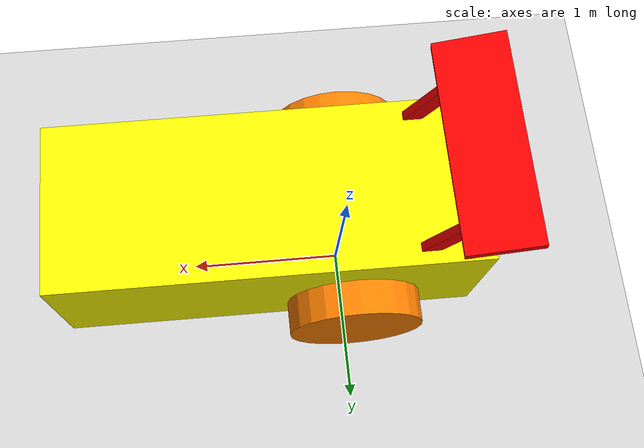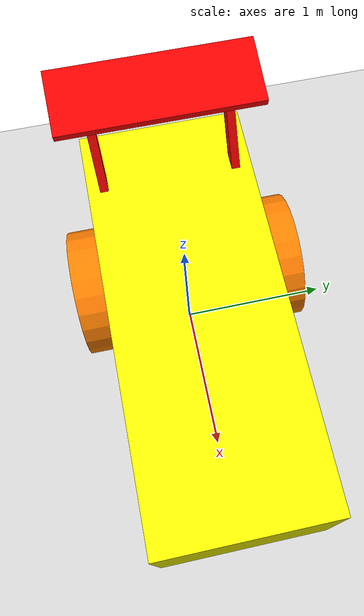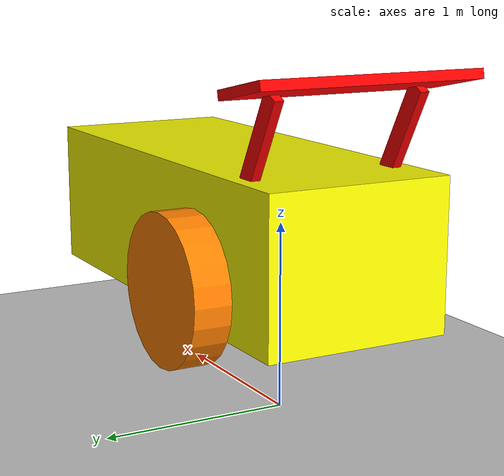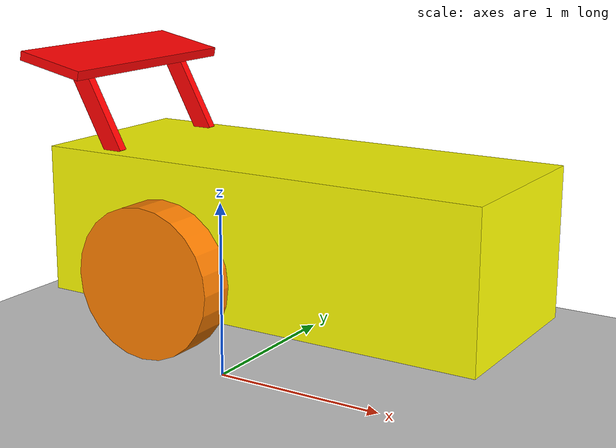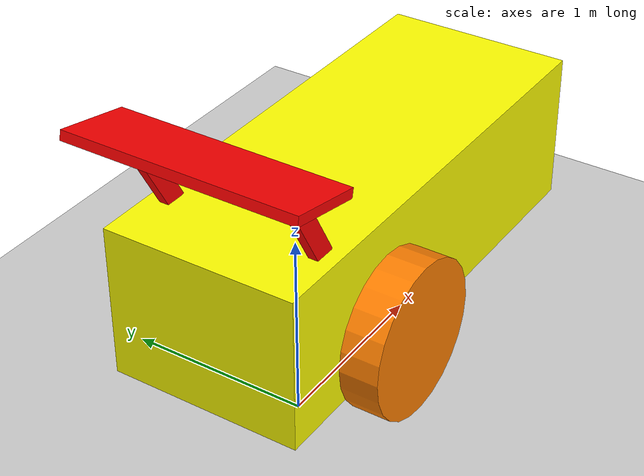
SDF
<?xml version="1.0" ?>
<sdf version="1.8">
    <world name="single_robot_clean">
        <physics name="1ms" type="ignored">
            <max_step_size>0.001</max_step_size>
            <real_time_factor>1.0</real_time_factor>
        </physics>
        <plugin filename="gz-sim-physics-system" name="gz::sim::systems::Physics"></plugin>
        <plugin filename="gz-sim-user-commands-system" name="gz::sim::systems::UserCommands"></plugin>
        <plugin filename="gz-sim-scene-broadcaster-system" name="gz::sim::systems::SceneBroadcaster"></plugin>
        <plugin filename="gz-sim-sensors-system" name="gz::sim::systems::Sensors">
            <render_engine>ogre2</render_engine>
        </plugin>

        <gui fullscreen="0">
            <plugin filename="MinimalScene" name="3D View">
                <gz-gui>
                    <title>3D View</title>
                    <property type="bool" key="showTitleBar">false</property>
                    <property type="string" key="state">docked</property>
                </gz-gui>
                <engine>ogre2</engine>
                <scene>scene</scene>
                <ambient_light>0.4 0.4 0.4</ambient_light>
                <background_color>0.8 0.8 0.8</background_color>
                <camera_pose>-6 0 6 0 0.5 0</camera_pose>
            </plugin>
            <plugin filename="GzSceneManager" name="Scene Manager"></plugin>
            <plugin filename="WorldControl" name="World control"></plugin>
            <plugin filename="WorldStats" name="World stats"></plugin>
            <plugin filename="KeyPublisher" name="Key Publisher"/>
        </gui>

        <light type="directional" name="sun">
            <cast_shadows>true</cast_shadows>
            <pose>0 0 10 0 0 0</pose>
            <diffuse>0.8 0.8 0.8 1</diffuse>
            <specular>0.2 0.2 0.2 1</specular>
            <direction>-0.5 0.1 -0.9</direction>
        </light>

        <model name="ground_plane">
            <static>true</static>
            <link name="link">
                <collision name="collision">
                    <geometry><plane><normal>0 0 1</normal></plane></geometry>
                </collision>
                <visual name="visual">
                    <geometry><plane><normal>0 0 1</normal><size>100 100</size></plane></geometry>
                    <material>
                        <ambient>0.8 0.8 0.8 1</ambient>
                        <diffuse>0.8 0.8 0.8 1</diffuse>
                    </material>
                </visual>
            </link>
        </model>

        <model name='vehicle_blue' canonical_link='chassis'>
            <pose relative_to='world'>0 0 0.325 0 0 0</pose>

            <frame name="lidar_frame" attached_to='chassis'>
                <pose>0.8 0 0.45 0 0 0</pose>
            </frame>

            <link name='chassis'>
                <pose relative_to='__model__'>0.5 0 0.6 0 0 0</pose>
                <inertial>
                    <mass>2.0</mass>
                    <inertia>
                        <ixx>0.126164</ixx><ixy>0</ixy><ixz>0</ixz>
                        <iyy>0.416519</iyy><iyz>0</iyz><izz>0.481014</izz>
                    </inertia>
                </inertial>
                <visual name='visual'>
                    <geometry><box><size>2.5 1.0 0.8</size></box></geometry>
                    <material>
                        <!-- Yellow Chassis (Red 1.0 + Green 1.0) -->
                        <ambient>1.0 1.0 0.0 1</ambient>
                        <diffuse>1.0 1.0 0.0 1</diffuse>
                        <specular>1.0 1.0 0.0 1</specular>
                    </material>
                </visual>
                <collision name='collision'>
                    <geometry><box><size>2.5 1.0 0.8</size></box></geometry>
                </collision>

                <sensor name="imu_sensor" type="imu">
                    <always_on>1</always_on>
                    <update_rate>1</update_rate>
                    <visualize>true</visualize>
                    <topic>imu</topic>
                </sensor>
                <sensor name='gpu_lidar' type='gpu_lidar'>
                    <pose relative_to='lidar_frame'>0 0 0 0 0 0</pose>
                    <topic>lidar</topic>
                    <update_rate>10</update_rate>
                    <ray>
                        <scan>
                            <horizontal>
                                <samples>640</samples><resolution>1</resolution>
                                <min_angle>-1.396263</min_angle><max_angle>1.396263</max_angle>
                            </horizontal>
                            <vertical>
                                <samples>1</samples><resolution>0.01</resolution>
                                <min_angle>0</min_angle><max_angle>0</max_angle>
                            </vertical>
                        </scan>
                        <range><min>0.08</min><max>10.0</max><resolution>0.01</resolution></range>
                    </ray>
                    <always_on>1</always_on>
                    <visualize>true</visualize>
                </sensor>

                <visual name='spoiler_left'>
                    <pose>-1.0 0.4 0.6 0 -0.5 0</pose>
                    <geometry><box><size>0.1 0.05 0.5</size></box></geometry>
                    <material><ambient>1 0 0 1</ambient><diffuse>1 0 0 1</diffuse></material>
                </visual>

                <visual name='spoiler_right'>
                    <pose>-1.0 -0.4 0.6 0 -0.5 0</pose>
                    <geometry><box><size>0.1 0.05 0.5</size></box></geometry>
                    <material><ambient>1 0 0 1</ambient><diffuse>1 0 0 1</diffuse></material>
                </visual>

                <visual name='spoiler_wing'>
                    <pose>-1.15 0 0.85 0 0.2 0</pose>
                    <geometry><box><size>0.4 1.2 0.05</size></box></geometry>
                    <material><ambient>1 0 0 1</ambient><diffuse>1 0 0 1</diffuse></material>
                </visual>

            </link>

            <link name='left_wheel'>
                <pose relative_to="chassis">-0.5 0.6 -0.2 -1.5707 0 0</pose>
                <inertial>
                    <mass>2</mass>
                    <inertia>
                        <ixx>0.145833</ixx><ixy>0</ixy><ixz>0</ixz>
                        <iyy>0.145833</iyy><iyz>0</iyz><izz>0.125</izz>
                    </inertia>
                </inertial>
                <visual name='visual'>
                    <geometry><cylinder><radius>0.4</radius><length>0.2</length></cylinder></geometry>
                    <material>
                        <!-- Orange Wheels (Red 1.0 + Green 0.5) -->
                        <ambient>1.0 0.5 0.0 1</ambient>
                        <diffuse>1.0 0.5 0.0 1</diffuse>
                    </material>
                </visual>
                <collision name='collision'>
                    <geometry><cylinder><radius>0.4</radius><length>0.2</length></cylinder></geometry>
                </collision>
            </link>

            <link name='right_wheel'>
                <pose relative_to="chassis">-0.5 -0.6 -0.2 -1.5707 0 0</pose>
                <inertial>
                    <mass>1</mass>
                    <inertia>
                        <ixx>0.145833</ixx><ixy>0</ixy><ixz>0</ixz>
                        <iyy>0.145833</iyy><iyz>0</iyz><izz>0.125</izz>
                    </inertia>
                </inertial>
                <visual name='visual'>
                    <geometry><cylinder><radius>0.4</radius><length>0.2</length></cylinder></geometry>
                    <material>
                        <!-- Orange Wheels (Red 1.0 + Green 0.5) -->
                        <ambient>1.0 0.5 0.0 1</ambient>
                        <diffuse>1.0 0.5 0.0 1</diffuse>
                    </material>
                </visual>
                <collision name='collision'>
                    <geometry><cylinder><radius>0.4</radius><length>0.2</length></cylinder></geometry>
                </collision>
            </link>

            <frame name="caster_frame" attached_to='chassis'>
                <pose>0.8 0 -0.4 0 0 0</pose>
            </frame>

            <link name='caster'>
                <pose relative_to='caster_frame'/>
                <inertial>
                    <mass>1</mass>
                    <inertia><ixx>0.1</ixx><ixy>0</ixy><ixz>0</ixz><iyy>0.1</iyy><iyz>0</iyz><izz>0.1</izz></inertia>
                </inertial>
                <visual name='visual'>
                    <geometry><sphere><radius>0.2</radius></sphere></geometry>
                    <material>
                        <!-- Orange Wheels (Red 1.0 + Green 0.5) -->
                        <ambient>1.0 0.5 0.0 1</ambient>
                        <diffuse>1.0 0.5 0.0 1</diffuse>
                    </material>
                </visual>
                <collision name='collision'>
                    <geometry><sphere><radius>0.2</radius></sphere></geometry>
                </collision>
            </link>

            <joint name='left_wheel_joint' type='revolute'>
                <pose relative_to='left_wheel'/>
                <parent>chassis</parent><child>left_wheel</child>
                <axis><xyz expressed_in='__model__'>0 1 0</xyz><limit><lower>-1e16</lower><upper>1e16</upper></limit></axis>
            </joint>

            <joint name='right_wheel_joint' type='revolute'>
                <pose relative_to='right_wheel'/>
                <parent>chassis</parent><child>right_wheel</child>
                <axis><xyz expressed_in='__model__'>0 1 0</xyz><limit><lower>-1e16</lower><upper>1e16</upper></limit></axis>
            </joint>

            <joint name='caster_wheel' type='ball'>
                <parent>chassis</parent><child>caster</child>
            </joint>

            <plugin filename="gz-sim-diff-drive-system" name="gz::sim::systems::DiffDrive">
                <left_joint>left_wheel_joint</left_joint>
                <right_joint>right_wheel_joint</right_joint>
                <wheel_separation>1.2</wheel_separation>
                <wheel_radius>0.4</wheel_radius>
                <odom_publish_frequency>1</odom_publish_frequency>
                <topic>cmd_vel</topic>
            </plugin>
        </model>

        <plugin filename="gz-sim-triggered-publisher-system" name="gz::sim::systems::TriggeredPublisher">
            <input type="gz.msgs.Int32" topic="/keyboard/keypress"><match field="data">16777234</match></input>
            <output type="gz.msgs.Twist" topic="/cmd_vel">linear: {x: 0.0}, angular: {z: 0.5}</output>
        </plugin>
        <plugin filename="gz-sim-triggered-publisher-system" name="gz::sim::systems::TriggeredPublisher">
            <input type="gz.msgs.Int32" topic="/keyboard/keypress"><match field="data">16777235</match></input>
            <output type="gz.msgs.Twist" topic="/cmd_vel">linear: {x: 0.5}, angular: {z: 0.0}</output>
        </plugin>
        <plugin filename="gz-sim-triggered-publisher-system" name="gz::sim::systems::TriggeredPublisher">
            <input type="gz.msgs.Int32" topic="/keyboard/keypress"><match field="data">16777236</match></input>
            <output type="gz.msgs.Twist" topic="/cmd_vel">linear: {x: 0.0}, angular: {z: -0.5}</output>
        </plugin>
        <plugin filename="gz-sim-triggered-publisher-system" name="gz::sim::systems::TriggeredPublisher">
            <input type="gz.msgs.Int32" topic="/keyboard/keypress"><match field="data">16777237</match></input>
            <output type="gz.msgs.Twist" topic="/cmd_vel">linear: {x: -0.5}, angular: {z: 0.0}</output>
        </plugin>
    </world>
</sdf>
